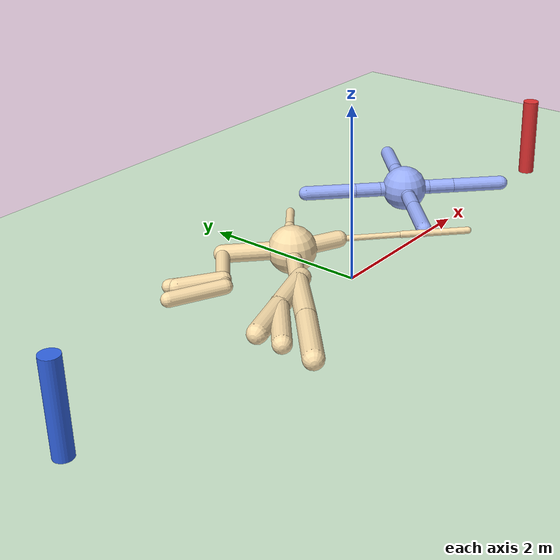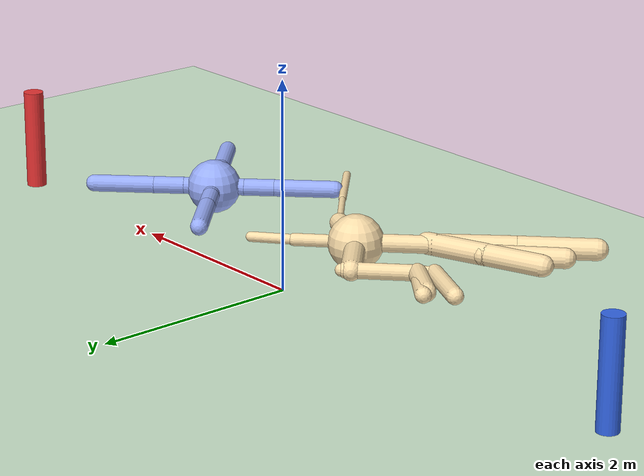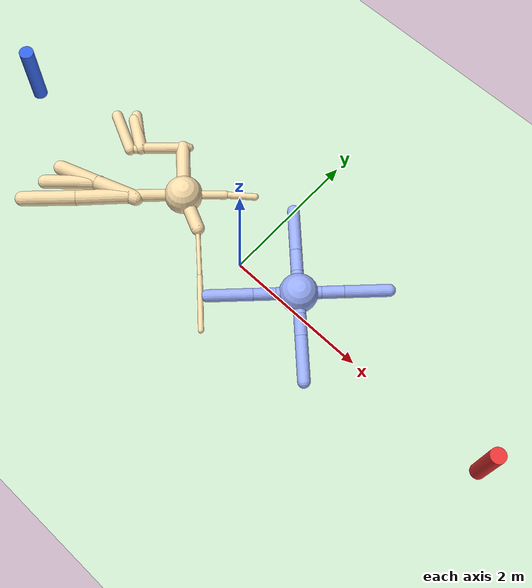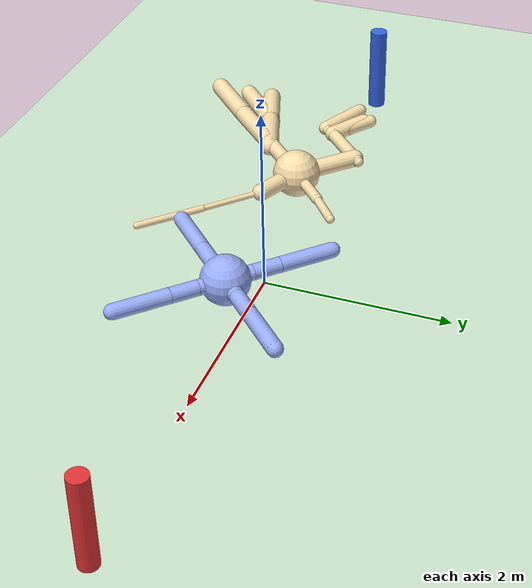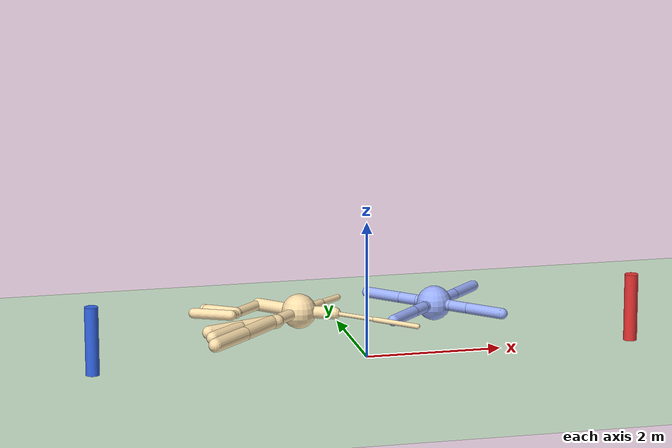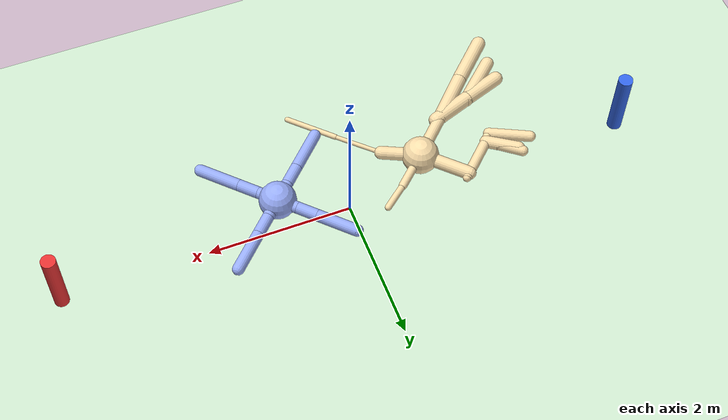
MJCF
<mujoco model="rtg_ant">
  <compiler angle="degree" coordinate="local" inertiafromgeom="true"/>
  <option integrator="RK4" timestep="0.003" solver="PGS" iterations="1000"/>
  <default>
    <joint armature="1" damping="1" limited="true"/>
    <geom conaffinity="0" condim="3" density="5.0" friction="1 0.5 0.5" margin="0.01" rgba="0.98 0.87 0.67 1" material="geom"/>
  </default>
  <visual>
    <headlight ambient=".1 .1 .1" diffuse=".6 .6 .6" specular="0.3 0.3 0.3"/>
    <map znear=".01"/>
    <quality shadowsize="1024"/>
  </visual>
  <worldbody>
    <light cutoff="100" diffuse="1 1 1" dir="-0 0 -1.3" directional="true" exponent="1" pos="0 0 1.3" specular=".1 .1 .1"/>
    <geom conaffinity="1" condim="3" name="floor" pos="0 0 0" rgba="0.8 0.9 0.8 1" size="200 200 .125" type="plane" material="grid_new"/>
    <body name="0" pos="-1 0 0.75" euler="0 0 0">
      <camera name="track" mode="trackcom" pos="0 -3 0.3" xyaxes="1 0 0 0 0 1"/>
      <geom pos="0 0 0" size="0.25" type="sphere"/>
      <joint armature="0" damping="0" limited="false" margin="0.01" name="0_joint" pos="0 0 0" range="-30 30" type="free"/>
      <body name="1" pos="0 0 0">
        <geom fromto="-0.000284 -0.000263 0 0.397842 0.368335 0" size="0.057225" type="capsule"/>
        <body name="11" pos="0.397842 0.368335 0">
          <geom fromto="-0.00148 -0.00119 0 0.303215 0.243884 0" size="0.04568" type="capsule"/>
        </body>
      </body>
      <body name="2" pos="0 0 0">
        <geom fromto="0.000165 -0.000165 0 -0.494145 0.491931 0" size="0.092602" type="capsule"/>
        <body name="12" pos="-0.494145 0.491931 0">
          <joint axis="0 0 1" name="12_joint" pos="0 0 0" range="-30 30" type="hinge"/>
          <geom fromto="0.058503 0.058447 0 -0.497571 -0.497091 0" size="0.057001" type="capsule"/>
          <body name="112" pos="-0.497571 -0.497091 0">
            <geom fromto="0.000056 -0.000027 0 -0.497561 0.242081 0" size="0.074924" type="capsule"/>
            <joint axis="-0.707107 -0.707107 0" name="112_joint" pos="0 0 0" range="30 70" type="hinge"/>
          </body>
        </body>
        <body name="22" pos="-0.494145 0.491931 0">
          <geom fromto="0.035292 0.033417 0 -0.406534 -0.38493 0" size="0.070755" type="capsule"/>
          <body name="122" pos="-0.406534 -0.38493 0">
            <geom fromto="0.000034 -0.000022 0 -0.37009 0.245714 0" size="0.083505" type="capsule"/>
          </body>
          <body name="222" pos="-0.406534 -0.38493 0">
            <geom fromto="0.000106 -0.000082 0 -0.401421 0.310594 0" size="0.071315" type="capsule"/>
          </body>
        </body>
      </body>
      <body name="3" pos="0 0 0">
        <geom fromto="0.019455 0.018993 0 -0.499856 -0.487977 0" size="0.080398" type="capsule"/>
        <body name="13" pos="-0.499856 -0.487977 0">
          <joint axis="0 0 1" name="13_joint" pos="0 0 0" range="-30 30" type="hinge"/>
          <geom fromto="0.000757 0.000775 0 -0.487367 -0.498964 0" size="0.099468" type="capsule"/>
          <body name="113" pos="-0.487367 -0.498964 0">
            <geom fromto="0.002282 0.002217 0 -0.499985 -0.485721 0" size="0.09896" type="capsule"/>
            <joint axis="0.707107 -0.707107 0" name="113_joint" pos="0 0 0" range="30 70" type="hinge"/>
          </body>
        </body>
        <body name="23" pos="-0.499856 -0.487977 0">
          <geom fromto="0.081164 0.028512 0 -0.461263 -0.162039 0" size="0.099531" type="capsule"/>
          <body name="123" pos="-0.461263 -0.162039 0">
            <geom fromto="0.028407 0.026023 0 -0.497459 -0.455715 0" size="0.091394" type="capsule"/>
          </body>
          <body name="223" pos="-0.461263 -0.162039 0">
            <geom fromto="0.000271 0.000093 0 -0.497256 -0.170676 0" size="0.097951" type="capsule"/>
          </body>
        </body>
      </body>
      <body name="4" pos="0 0 0">
        <geom fromto="-0.000576 0.000272 0 0.473452 -0.22319 0" size="0.089097" type="capsule"/>
        <body name="14" pos="0.473452 -0.22319 0">
          <joint axis="0 0 1" name="14_joint" pos="0 0 0" range="-30 30" type="hinge"/>
          <geom fromto="-0.018728 0.017868 0 0.483968 -0.461726 0" size="0.030154" type="capsule"/>
          <body name="114" pos="0.483968 -0.461726 0">
            <geom fromto="-0.003727 0.00368 0 0.499031 -0.492765 0" size="0.03647" type="capsule"/>
            <joint axis="0.707107 0.707107 0" name="114_joint" pos="0 0 0" range="30 70" type="hinge"/>
          </body>
        </body>
      </body>
    </body>
    <body name="opp_0" pos="1 0 0.75" euler="0 0 180">
      <geom pos="0 0 0" size="0.25" type="sphere" contype="0" conaffinity="1" rgba="0.60 0.68 0.98 1"/>
      <joint armature="0" damping="0" limited="false" margin="0.01" name="opp_0_joint" pos="0 0 0" range="-30 30" type="free"/>
      <body name="opp_1" pos="0 0 0">
        <geom fromto="0 0 0 0.2 0.2 0" size="0.08" type="capsule" contype="0" conaffinity="1" rgba="0.60 0.68 0.98 1"/>
        <body name="opp_11" pos="0.2 0.2 0">
          <joint axis="0 0 1" name="opp_11_joint" pos="0 0 0" range="-30 30" type="hinge"/>
          <geom fromto="0.0 0.0 0.0 0.2 0.2 0.0" size="0.08" type="capsule" contype="0" conaffinity="1" rgba="0.60 0.68 0.98 1"/>
          <body name="opp_111" pos="0.2 0.2 0">
            <geom fromto="0 0 0 0.4 0.4 0" size="0.08" type="capsule" contype="0" conaffinity="1" rgba="0.60 0.68 0.98 1"/>
            <joint axis="-0.707107 0.707107 0" name="opp_111_joint" pos="0 0 0" range="30 70" type="hinge"/>
          </body>
        </body>
      </body>
      <body name="opp_2" pos="0 0 0">
        <geom fromto="0 0 0 -0.2 0.2 0" size="0.08" type="capsule" contype="0" conaffinity="1" rgba="0.60 0.68 0.98 1"/>
        <body name="opp_12" pos="-0.2 0.2 0">
          <joint axis="0 0 1" name="opp_12_joint" pos="0 0 0" range="-30 30" type="hinge"/>
          <geom fromto="0.0 0.0 0.0 -0.2 0.2 0.0" size="0.08" type="capsule" contype="0" conaffinity="1" rgba="0.60 0.68 0.98 1"/>
          <body name="opp_112" pos="-0.2 0.2 0">
            <geom fromto="0 0 0 -0.4 0.4 0" size="0.08" type="capsule" contype="0" conaffinity="1" rgba="0.60 0.68 0.98 1"/>
            <joint axis="-0.707107 -0.707107 0" name="opp_112_joint" pos="0 0 0" range="30 70" type="hinge"/>
          </body>
        </body>
      </body>
      <body name="opp_3" pos="0 0 0">
        <geom fromto="0 0 0 -0.2 -0.2 0" size="0.08" type="capsule" contype="0" conaffinity="1" rgba="0.60 0.68 0.98 1"/>
        <body name="opp_13" pos="-0.2 -0.2 0">
          <joint axis="0 0 1" name="opp_13_joint" pos="0 0 0" range="-30 30" type="hinge"/>
          <geom fromto="0 0 0 -0.2 -0.2 0" size="0.08" type="capsule" contype="0" conaffinity="1" rgba="0.60 0.68 0.98 1"/>
          <body name="opp_113" pos="-0.2 -0.2 0">
            <geom fromto="0 0 0 -0.4 -0.4 0" size="0.08" type="capsule" contype="0" conaffinity="1" rgba="0.60 0.68 0.98 1"/>
            <joint axis="0.707107 -0.707107 0" name="opp_113_joint" pos="0 0 0" range="30 70" type="hinge"/>
          </body>
        </body>
      </body>
      <body name="opp_4" pos="0 0 0">
        <geom fromto="0 0 0 0.2 -0.2 0" size="0.08" type="capsule" contype="0" conaffinity="1" rgba="0.60 0.68 0.98 1"/>
        <body name="opp_14" pos="0.2 -0.2 0">
          <joint axis="0 0 1" name="opp_14_joint" pos="0 0 0" range="-30 30" type="hinge"/>
          <geom fromto="0 0 0 0.2 -0.2 0" size="0.08" type="capsule" contype="0" conaffinity="1" rgba="0.60 0.68 0.98 1"/>
          <body name="opp_114" pos="0.2 -0.2 0">
            <geom fromto="0 0 0 0.4 -0.4 0" size="0.08" type="capsule" contype="0" conaffinity="1" rgba="0.60 0.68 0.98 1"/>
            <joint axis="0.707107 0.707107 0" name="opp_114_joint" pos="0 0 0" range="30 70" type="hinge"/>
          </body>
        </body>
      </body>
    </body>
    <geom name="rightgoal" type="cylinder" fromto="4 0 0 4 0 1" size="0.1" contype="1" conaffinity="1" condim="3" rgba="0.9 0.2 0.2 1"/>
    <geom name="leftgoal" type="cylinder" fromto="-4 0 0 -4 0 1" size="0.1" contype="1" conaffinity="1" condim="3" rgba="0.2 0.4 0.9 1"/>
    <camera name="pitch" mode="fixed" pos="0 -11 5.5" xyaxes="1 0 0 0 0.45 0.89"/>
  </worldbody>
  <actuator>
    <motor ctrllimited="true" ctrlrange="-1.0 1.0" joint="12_joint" gear="399.160016" name="12_joint"/>
    <motor ctrllimited="true" ctrlrange="-1.0 1.0" joint="13_joint" gear="88.017042" name="13_joint"/>
    <motor ctrllimited="true" ctrlrange="-1.0 1.0" joint="14_joint" gear="337.477483" name="14_joint"/>
    <motor ctrllimited="true" ctrlrange="-1.0 1.0" joint="112_joint" gear="79.105699" name="112_joint"/>
    <motor ctrllimited="true" ctrlrange="-1.0 1.0" joint="113_joint" gear="97.02089" name="113_joint"/>
    <motor ctrllimited="true" ctrlrange="-1.0 1.0" joint="114_joint" gear="171.688966" name="114_joint"/>
    <motor ctrllimited="true" ctrlrange="-1.0 1.0" joint="opp_11_joint" gear="150" name="opp_11_joint"/>
    <motor ctrllimited="true" ctrlrange="-1.0 1.0" joint="opp_12_joint" gear="150" name="opp_12_joint"/>
    <motor ctrllimited="true" ctrlrange="-1.0 1.0" joint="opp_13_joint" gear="150" name="opp_13_joint"/>
    <motor ctrllimited="true" ctrlrange="-1.0 1.0" joint="opp_14_joint" gear="150" name="opp_14_joint"/>
    <motor ctrllimited="true" ctrlrange="-1.0 1.0" joint="opp_111_joint" gear="150" name="opp_111_joint"/>
    <motor ctrllimited="true" ctrlrange="-1.0 1.0" joint="opp_112_joint" gear="150" name="opp_112_joint"/>
    <motor ctrllimited="true" ctrlrange="-1.0 1.0" joint="opp_113_joint" gear="150" name="opp_113_joint"/>
    <motor ctrllimited="true" ctrlrange="-1.0 1.0" joint="opp_114_joint" gear="150" name="opp_114_joint"/>
  </actuator>
  <asset>
    <texture type="skybox" builtin="gradient" rgb1=".4 .5 .6" rgb2="0 0 0" width="100" height="100"/>
    <texture builtin="flat" height="1278" mark="cross" markrgb="1 1 1" name="texgeom" random="0.01" rgb1="0.8 0.6 0.4" rgb2="0.8 0.6 0.4" type="cube" width="127"/>
    <texture builtin="checker" height="100" name="texplane" rgb1="0 0 0" rgb2="0.8 0.8 0.8" type="2d" width="100"/>
    <material name="MatPlane" reflectance="0.5" shininess="1" specular="1" texrepeat="60 60" texture="texplane"/>
    <material name="geom" texture="texgeom" texuniform="true"/>
    <texture name="grid_new" type="2d" builtin="checker" rgb1=".1 .3 .2" rgb2=".2 .4 .3" width="1000" height="1000" mark="none" markrgb=".8 .6 .4"/>
    <material name="grid_new" texture="grid_new" texrepeat="0.2 0.2" texuniform="true" reflectance=".2"/>
  </asset>
</mujoco>
